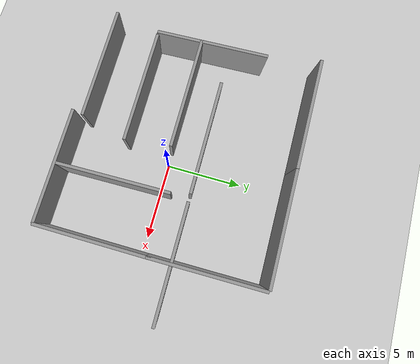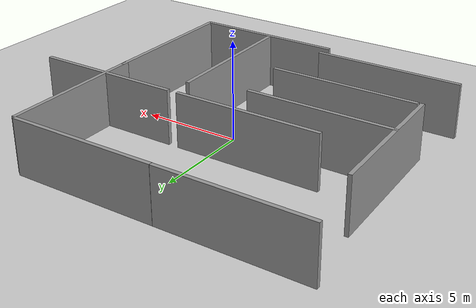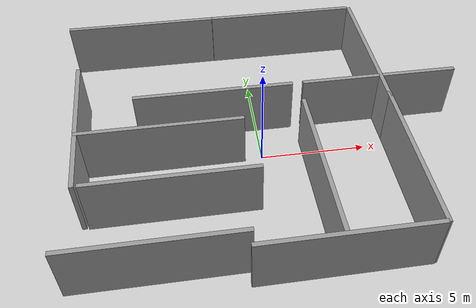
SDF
<sdf version="1.4">
 <world name="default">
  <light name="sun" type="directional">
   <pose>0 0 10 0 -0 0</pose>
   <diffuse>0.8 0.8 0.8 1</diffuse>
   <specular>0.2 0.2 0.2 1</specular>
   <attenuation>
    <range>1000</range>
    <constant>0.9</constant>
    <linear>0.01</linear>
    <quadratic>0.001</quadratic>
   </attenuation>
   <direction>-0.5 0.1 -0.9</direction>
  </light>
  <model name="ground_plane">
   <static>1</static>
   <link name="link">
    <collision name="collision">
     <geometry><plane><normal>0 0 1</normal><size>100 100</size></plane></geometry>
     <surface><friction><ode><mu>100</mu><mu2>50</mu2></ode></friction></surface>
    </collision>
    <visual name="visual">
     <cast_shadows>0</cast_shadows>
     <geometry><plane><normal>0 0 1</normal><size>100 100</size></plane></geometry>
     <material>
      <script><uri>file://media/materials/scripts/gazebo.material</uri><name>Gazebo/Grey</name></script>
     </material>
    </visual>
    <velocity_decay><linear>0</linear><angular>0</angular></velocity_decay>
   </link>
  </model>
  <physics type="ode">
   <max_step_size>0.001</max_step_size>
   <real_time_factor>1</real_time_factor>
   <real_time_update_rate>1000</real_time_update_rate>
   <gravity>0 0 -9.8</gravity>
  </physics>
  <scene><ambient>0.4 0.4 0.4 1</ambient><background>0.7 0.7 0.7 1</background><shadows>1</shadows></scene>
  <spherical_coordinates>
   <surface_model>EARTH_WGS84</surface_model>
   <latitude_deg>0</latitude_deg>
   <longitude_deg>0</longitude_deg>
   <elevation>0</elevation>
   <heading_deg>0</heading_deg>
  </spherical_coordinates>
  <model name="grey_wall">
   <static>1</static>
   <link name="link">
    <pose>0 0 1.4 0 -0 0</pose>
    <collision name="collision"><geometry><box><size>7.5 0.2 2.8</size></box></geometry></collision>
    <visual name="visual">
     <cast_shadows>0</cast_shadows>
     <geometry><box><size>7.5 0.2 2.8</size></box></geometry>
     <material>
      <script>
       <uri>model://grey_wall/materials/scripts</uri>
       <uri>model://grey_wall/materials/textures</uri>
       <name>vrc/grey_wall</name>
      </script>
     </material>
    </visual>
    <velocity_decay><linear>0</linear><angular>0</angular></velocity_decay>
   </link>
   <pose>-5.30263 7.9542 0 0 -0 0</pose>
  </model>
  <model name="grey_wall_0">
   <static>1</static>
   <link name="link">
    <pose>0 0 1.4 0 -0 0</pose>
    <collision name="collision"><geometry><box><size>7.5 0.2 2.8</size></box></geometry></collision>
    <visual name="visual">
     <cast_shadows>0</cast_shadows>
     <geometry><box><size>7.5 0.2 2.8</size></box></geometry>
     <material>
      <script>
       <uri>model://grey_wall/materials/scripts</uri>
       <uri>model://grey_wall/materials/textures</uri>
       <name>vrc/grey_wall</name>
      </script>
     </material>
    </visual>
    <velocity_decay><linear>0</linear><angular>0</angular></velocity_decay>
   </link>
   <pose>-4.17438 -2.94975 0 0 -0 0</pose>
  </model>
  <model name="grey_wall_1">
   <static>1</static>
   <link name="link">
    <pose>0 0 1.4 0 -0 0</pose>
    <collision name="collision"><geometry><box><size>7.5 0.2 2.8</size></box></geometry></collision>
    <visual name="visual">
     <cast_shadows>0</cast_shadows>
     <geometry><box><size>7.5 0.2 2.8</size></box></geometry>
     <material>
      <script>
       <uri>model://grey_wall/materials/scripts</uri>
       <uri>model://grey_wall/materials/textures</uri>
       <name>vrc/grey_wall</name>
      </script>
     </material>
    </visual>
    <velocity_decay><linear>0</linear><angular>0</angular></velocity_decay>
   </link>
   <pose>-8.24091 0.730795 0 0 0 -1.53854</pose>
  </model>
  <model name="grey_wall_2">
   <static>1</static>
   <link name="link">
    <pose>0 0 1.4 0 -0 0</pose>
    <collision name="collision"><geometry><box><size>7.5 0.2 2.8</size></box></geometry></collision>
    <visual name="visual">
     <cast_shadows>0</cast_shadows>
     <geometry><box><size>7.5 0.2 2.8</size></box></geometry>
     <material>
      <script>
       <uri>model://grey_wall/materials/scripts</uri>
       <uri>model://grey_wall/materials/textures</uri>
       <name>vrc/grey_wall</name>
      </script>
     </material>
    </visual>
    <velocity_decay><linear>0</linear><angular>0</angular></velocity_decay>
   </link>
   <pose>-4.55904 0 0 0 -0 0</pose>
  </model>
  <model name="grey_wall_4">
   <static>1</static>
   <link name="link">
    <pose>0 0 1.4 0 -0 0</pose>
    <collision name="collision"><geometry><box><size>7.5 0.2 2.8</size></box></geometry></collision>
    <visual name="visual">
     <cast_shadows>0</cast_shadows>
     <geometry><box><size>7.5 0.2 2.8</size></box></geometry>
     <material>
      <script>
       <uri>model://grey_wall/materials/scripts</uri>
       <uri>model://grey_wall/materials/textures</uri>
       <name>vrc/grey_wall</name>
      </script>
     </material>
    </visual>
    <velocity_decay><linear>0</linear><angular>0</angular></velocity_decay>
   </link>
   <pose>2.30961 -6.67349 0 0 -0 0</pose>
  </model>
  <model name="grey_wall_5">
   <static>1</static>
   <link name="link">
    <pose>0 0 1.4 0 -0 0</pose>
    <collision name="collision"><geometry><box><size>7.5 0.2 2.8</size></box></geometry></collision>
    <visual name="visual">
     <cast_shadows>0</cast_shadows>
     <geometry><box><size>7.5 0.2 2.8</size></box></geometry>
     <material>
      <script>
       <uri>model://grey_wall/materials/scripts</uri>
       <uri>model://grey_wall/materials/textures</uri>
       <name>vrc/grey_wall</name>
      </script>
     </material>
    </visual>
    <velocity_decay><linear>0</linear><angular>0</angular></velocity_decay>
   </link>
   <pose>-2 2 0 0 -0 0</pose>
  </model>
  <model name="grey_wall_6">
   <static>1</static>
   <link name="link">
    <pose>0 0 1.4 0 -0 0</pose>
    <collision name="collision"><geometry><box><size>7.5 0.2 2.8</size></box></geometry></collision>
    <visual name="visual">
     <cast_shadows>0</cast_shadows>
     <geometry><box><size>7.5 0.2 2.8</size></box></geometry>
     <material>
      <script>
       <uri>model://grey_wall/materials/scripts</uri>
       <uri>model://grey_wall/materials/textures</uri>
       <name>vrc/grey_wall</name>
      </script>
     </material>
    </visual>
    <velocity_decay><linear>0</linear><angular>0</angular></velocity_decay>
   </link>
   <pose>2.20685 7.95292 0 0 -0 0</pose>
  </model>
  <model name="grey_wall_7">
   <static>1</static>
   <link name="link">
    <pose>0 0 1.4 0 -0 0</pose>
    <collision name="collision"><geometry><box><size>7.5 0.2 2.8</size></box></geometry></collision>
    <visual name="visual">
     <cast_shadows>0</cast_shadows>
     <geometry><box><size>7.5 0.2 2.8</size></box></geometry>
     <material>
      <script>
       <uri>model://grey_wall/materials/scripts</uri>
       <uri>model://grey_wall/materials/textures</uri>
       <name>vrc/grey_wall</name>
      </script>
     </material>
    </visual>
    <velocity_decay><linear>0</linear><angular>0</angular></velocity_decay>
   </link>
   <pose>-5 -6 0 0 -0 0</pose>
  </model>
  <model name="grey_wall_8">
   <static>1</static>
   <link name="link">
    <pose>0 0 1.4 0 -0 0</pose>
    <collision name="collision"><geometry><box><size>7.5 0.2 2.8</size></box></geometry></collision>
    <visual name="visual">
     <cast_shadows>0</cast_shadows>
     <geometry><box><size>7.5 0.2 2.8</size></box></geometry>
     <material>
      <script>
       <uri>model://grey_wall/materials/scripts</uri>
       <uri>model://grey_wall/materials/textures</uri>
       <name>vrc/grey_wall</name>
      </script>
     </material>
    </visual>
    <velocity_decay><linear>0</linear><angular>0</angular></velocity_decay>
   </link>
   <pose>6 2 0 0 -0 0</pose>
  </model>
  <model name="grey_wall_9">
   <static>1</static>
   <link name="link">
    <pose>0 0 1.4 0 -0 0</pose>
    <collision name="collision"><geometry><box><size>7.5 0.2 2.8</size></box></geometry></collision>
    <visual name="visual">
     <cast_shadows>0</cast_shadows>
     <geometry><box><size>7.5 0.2 2.8</size></box></geometry>
     <material>
      <script>
       <uri>model://grey_wall/materials/scripts</uri>
       <uri>model://grey_wall/materials/textures</uri>
       <name>vrc/grey_wall</name>
      </script>
     </material>
    </visual>
    <velocity_decay><linear>0</linear><angular>0</angular></velocity_decay>
   </link>
   <pose>2.09273 -2.92868 0 0 0 -1.55688</pose>
  </model>
  <model name="grey_wall_10">
   <static>1</static>
   <link name="link">
    <pose>0 0 1.4 0 -0 0</pose>
    <collision name="collision"><geometry><box><size>7.5 0.2 2.8</size></box></geometry></collision>
    <visual name="visual">
     <cast_shadows>0</cast_shadows>
     <geometry><box><size>7.5 0.2 2.8</size></box></geometry>
     <material>
      <script>
       <uri>model://grey_wall/materials/scripts</uri>
       <uri>model://grey_wall/materials/textures</uri>
       <name>vrc/grey_wall</name>
      </script>
     </material>
    </visual>
    <velocity_decay><linear>0</linear><angular>0</angular></velocity_decay>
   </link>
   <pose>6.07538 -2.97958 0 0 -0 1.56855</pose>
  </model>
  <model name="grey_wall_11">
   <static>1</static>
   <link name="link">
    <pose>0 0 1.4 0 -0 0</pose>
    <collision name="collision"><geometry><box><size>7.5 0.2 2.8</size></box></geometry></collision>
    <visual name="visual">
     <cast_shadows>0</cast_shadows>
     <geometry><box><size>7.5 0.2 2.8</size></box></geometry>
     <material>
      <script>
       <uri>model://grey_wall/materials/scripts</uri>
       <uri>model://grey_wall/materials/textures</uri>
       <name>vrc/grey_wall</name>
      </script>
     </material>
    </visual>
    <velocity_decay><linear>0</linear><angular>0</angular></velocity_decay>
   </link>
   <pose>6.05675 4.18204 0 0 0 -1.56447</pose>
  </model>
  <light name="sun_0" type="directional">
   <pose>0 0 10 0 -0 0</pose>
   <diffuse>0.8 0.8 0.8 1</diffuse>
   <specular>0.2 0.2 0.2 1</specular>
   <attenuation>
    <range>1000</range>
    <constant>0.9</constant>
    <linear>0.01</linear>
    <quadratic>0.001</quadratic>
   </attenuation>
   <direction>-0.5 0.1 -0.9</direction>
  </light>
 </world>
</sdf>
